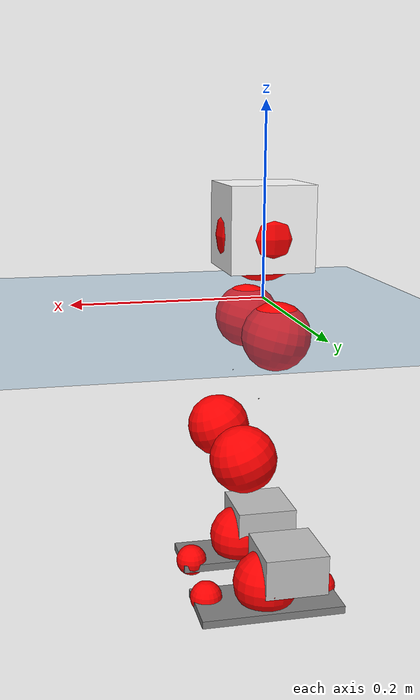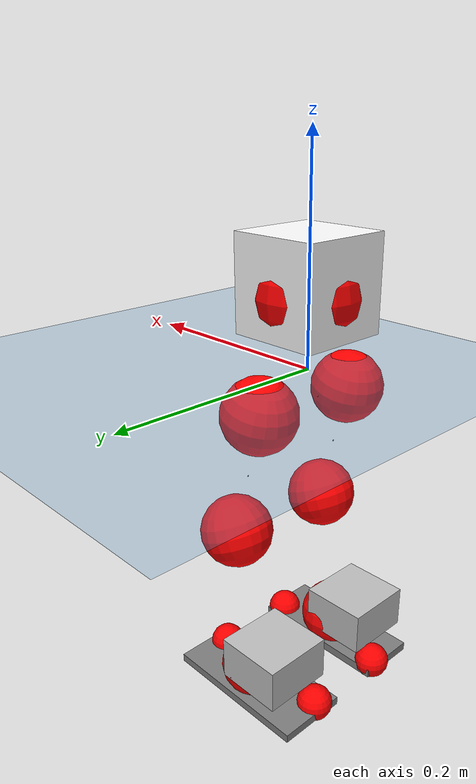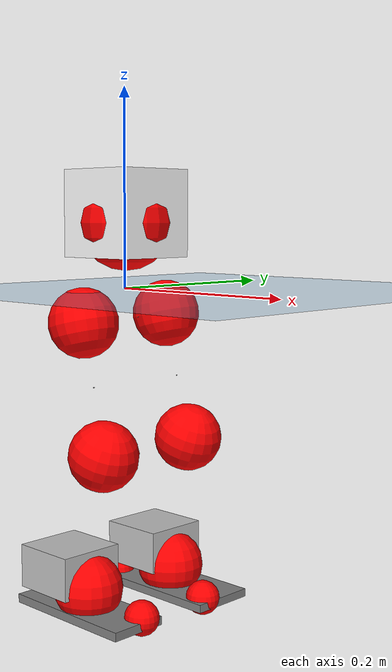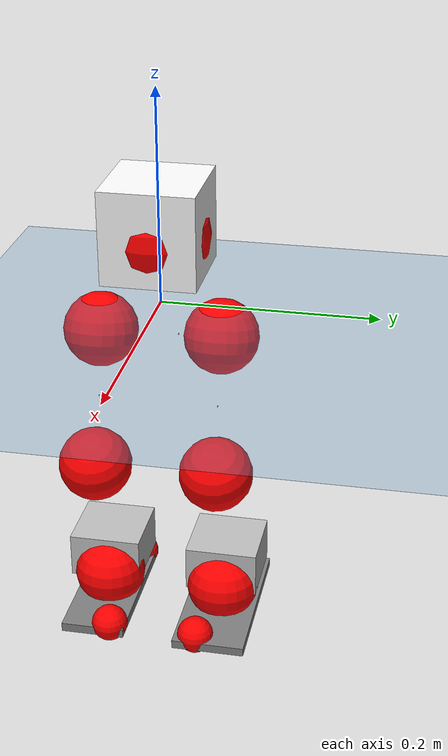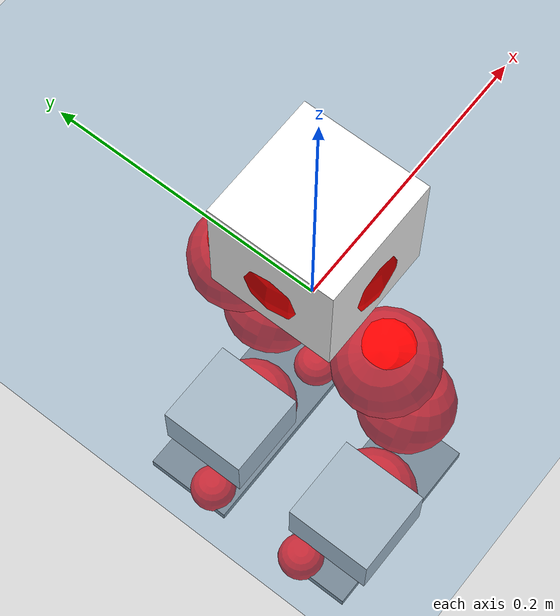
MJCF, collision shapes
<mujoco model="pi_12dof_release_v1">
  <compiler angle="radian" assetdir="assets" balanceinertia="true" inertiafromgeom="false"/>

  <option timestep="0.005" density="1.2" viscosity="2e-05"/>

  <size nkey="1"/>

  <visual>
    <quality shadowsize="8192"/>
    <map shadowclip="0.5"/>
  </visual>

  <default>
    <default class="/">
      <joint armature="0.01" damping="0.01" frictionloss="0.01"/>
      <geom contype="0" conaffinity="0" group="1" solref="-1000 -80"/>
      <site size="0.01 0.005 0.005" group="5"/>
      <general forcelimited="true" biastype="affine" gainprm="20" biasprm="0 -20 -0.5"/>
      <default class="foot">
        <geom size="0.0845 0.036 0.005" type="box" condim="6" group="4" priority="1" friction="0.9 0.2 0.2" solimp="0.015 1 0.005"/>
      </default>
      <default class="reward_collision_sphere">
        <geom group="5" rgba="1 0 0 1"/>
      </default>
    </default>
  </default>

  <asset>
    <texture type="skybox" colorspace="auto" name="//unnamed_texture_0" builtin="gradient" rgb1="0.95 0.95 0.95" rgb2="0.95 0.95 0.95" width="100" height="600"/>
    <texture type="2d" colorspace="auto" name="texplane" builtin="checker" rgb1="0.345 0.575 0.748" rgb2="0.345 0.575 0.748" markrgb="1 1 1" width="512" height="512"/>
    <material name="MatPlane" class="/" texture="texplane" texuniform="true" texrepeat="2 2" specular="0.9"/>
    <mesh name="baselink_1" class="/" file="baselink_1.STL"/>
    <mesh name="r_hip_pitch_link" class="/" file="r_hip_pitch_link.STL"/>
    <mesh name="r_hip_roll_link" class="/" file="r_hip_roll_link.STL"/>
    <mesh name="r_thigh_link" class="/" file="r_thigh_link.STL"/>
    <mesh name="r_calf_link" class="/" file="r_calf_link.STL"/>
    <mesh name="r_ankle_pitch_link" class="/" file="r_ankle_pitch_link.STL"/>
    <mesh name="r_ankle_roll_link" class="/" file="r_ankle_roll_link.STL"/>
    <mesh name="l_hip_pitch_link" class="/" file="l_hip_pitch_link.STL"/>
    <mesh name="l_hip_roll_link" class="/" file="l_hip_roll_link.STL"/>
    <mesh name="l_thigh_link" class="/" file="l_thigh_link.STL"/>
    <mesh name="l_calf_link" class="/" file="l_calf_link.STL"/>
    <mesh name="l_ankle_pitch_link" class="/" file="l_ankle_pitch_link.STL"/>
    <mesh name="l_ankle_roll_link" class="/" file="l_ankle_roll_link.STL"/>
  </asset>

  <worldbody>
    <geom name="floor" class="/" size="100 100 0.125" type="plane" group="0" material="MatPlane"/>
    <light name="toplight_shadow" class="/" pos="0 0 5" dir="0.0990148 0.0990148 -0.990148" type="directional" ambient="0.04 0.04 0.04" diffuse="0.55 0.55 0.55" specular="0.12 0.12 0.12"/>
    <light name="toplight_fill" class="/" pos="0 0 5" dir="0.0990148 0.0990148 -0.990148" type="directional" castshadow="false" ambient="0.04 0.04 0.04" diffuse="0.3 0.3 0.3" specular="0.08 0.08 0.08"/>
    <body name="trunk" pos="0.00195206 -0.000208767 0.000923907" quat="1 0.000268607 0.000680062 0.000178551">
      <inertial pos="0.000351408 -0.00166851 0.0370168" quat="0.696152 0.0094488 0.0096157 0.717768" mass="1.36544" diaginertia="0.00712735 0.00194332 0.00281847"/>
      <joint name="//unnamed_joint_0" type="free"/>
      <geom name="//unnamed_geom_1" class="/" type="mesh" density="0" rgba="1 1 1 1" mesh="baselink_1"/>
      <geom name="//unnamed_geom_2" class="/" size="0.043463 0.043463 0.043463" pos="0 0 0.0743545" type="box" rgba="1 1 1 1"/>
      <geom name="//unnamed_geom_3" class="reward_collision_sphere" size="0.0478093" pos="0 0 0.0650602"/>
      <site name="imu" class="/" pos="-0.00171679 -0.00352813 0.00669788" size="0.0086926"/>
      <camera name="track" class="/" pos="0 -1.47502 0" quat="0.707107 0.707107 0 0" mode="trackcom"/>
      <camera name="ego_camera" class="/" pos="0.0705631 0 0.167298" quat="-0.5 -0.5 0.5 0.5"/>
      <body name="r_hip_pitch_link" pos="0.000245634 -0.0164017 -0.0313688" quat="0.992159 -0.000186708 -0.124982 0.000526107">
        <inertial pos="0.000863428 -0.0419453 -0.000124446" quat="-0.0205349 0.70487 -0.0273206 0.708513" mass="0.245599" diaginertia="8.19182e-05 2.116e-05 5.74977e-05"/>
        <joint name="r_hip_pitch_joint" class="/" pos="0 0 0" axis="-0.00113957 -0.999999 -0.000704533" stiffness="0.00226345" range="-1.73117 1.25883" armature="0.00892737" damping="0.0172168" frictionloss="0.00881322"/>
        <geom name="//unnamed_geom_4" class="/" type="mesh" density="0" rgba="0.75294 0.75294 0.75294 1" mesh="r_hip_pitch_link"/>
        <geom name="//unnamed_geom_5" class="/" size="0.00043463 0.00043463 0.00043463" type="box" rgba="0.75294 0.75294 0.75294 1"/>
        <body name="r_hip_roll_link" pos="-0.000625658 -0.0401033 -8.51973e-05" quat="1 0.000214993 0.000139391 -0.000250036">
          <inertial pos="-0.000675287 -7.00255e-05 -0.0587252" quat="0.705954 -0.0787517 -0.0825516 0.699008" mass="0.254272" diaginertia="0.000243004 6.07104e-05 9.11154e-05"/>
          <joint name="r_hip_roll_joint" class="/" pos="0 0 0" axis="-0.999999 -0.000498531 -0.00162545" range="-0.112922 0.493646" armature="0.00912365" damping="0" frictionloss="0.0090598"/>
          <geom name="//unnamed_geom_6" class="/" type="mesh" density="0" rgba="0.75294 0.75294 0.75294 1" mesh="r_hip_roll_link"/>
          <geom name="//unnamed_geom_7" class="/" size="0.00043463 0.00043463 0.00043463" type="box" rgba="0.75294 0.75294 0.75294 1"/>
          <geom name="//unnamed_geom_8" class="reward_collision_sphere" size="0.0347704"/>
          <body name="r_thigh_link" pos="-0.000796408 -0.000494937 -0.063701" quat="1 7.26001e-06 -0.000179138 7.83699e-05">
            <inertial pos="-0.000277871 0.000741786 -0.0442425" quat="0.739641 0.672993 -0.00205368 -0.00272332" mass="0.0740326" diaginertia="9.50775e-05 2.11073e-05 4.08422e-05"/>
            <joint name="r_thigh_joint" class="/" pos="0 0 0" axis="0.000581335 -0.0014381 -0.999999" range="-0.31333 0.582705" armature="0.008905" damping="0.00275244" frictionloss="0.00783553"/>
            <geom name="//unnamed_geom_9" class="/" type="mesh" density="0" rgba="0.75294 0.75294 0.75294 1" mesh="r_thigh_link"/>
            <geom name="//unnamed_geom_10" class="/" size="0.00043463 0.00043463 0.00043463" type="box" rgba="0.75294 0.75294 0.75294 1"/>
            <body name="r_calf_link" pos="-0.000813254 -0.001989 -0.0669786" quat="0.947576 -6.75052e-05 0.319531 9.2793e-05">
              <inertial pos="-0.00122777 -0.00174784 -0.0648654" quat="0.999965 -0.0072364 -0.00102314 0.00415956" mass="0.532223" diaginertia="0.00260528 0.000769696 0.000122403"/>
              <joint name="r_calf_joint" class="/" pos="0 0 0" axis="-0.000247649 -1 0.000700534" range="-1.61444 0.637842" armature="0.00855902" damping="0.00926207" frictionloss="0.00886529"/>
              <geom name="//unnamed_geom_11" class="/" type="mesh" density="0" rgba="0.75294 0.75294 0.75294 1" mesh="r_calf_link"/>
              <geom name="//unnamed_geom_12" class="/" size="0.00043463 0.00043463 0.00043463" type="box" rgba="0.75294 0.75294 0.75294 1"/>
              <geom name="//unnamed_geom_13" class="reward_collision_sphere" size="0.0347704"/>
              <body name="r_ankle_pitch_link" pos="-5.94438e-05 -0.000761524 -0.130379" quat="0.980068 -3.54734e-05 -0.198664 -4.70797e-05">
                <inertial pos="0.00388029 0.00226067 -0.000805953" quat="0.00132542 0.707003 -0.00281406 0.707204" mass="0.116308" diaginertia="0.000228142 4.94298e-05 8.49171e-05"/>
                <joint name="r_ankle_pitch_joint" class="/" pos="0 0 0" axis="1.14994e-05 -0.999978 -0.00666305" stiffness="0.0003076" range="-1.3175 0.499137" armature="0.00875793" damping="0.00467381" frictionloss="0.00842567"/>
                <geom name="//unnamed_geom_14" class="/" type="mesh" density="0" rgba="0.75294 0.75294 0.75294 1" mesh="r_ankle_pitch_link"/>
                <geom name="//unnamed_geom_15" class="/" size="0.0339012 0.0347704 0.0217315" type="box" rgba="0.75294 0.75294 0.75294 1"/>
                <body name="r_ankle_roll_link" pos="0.0719872 0.00291567 0.000634405" quat="1 1.3226e-05 -2.43395e-05 7.7349e-05">
                  <inertial pos="-0.0225093 0.000424813 -0.0135195" quat="0.557438 0.43488 0.43061 0.560996" mass="0.341742" diaginertia="0.000835762 0.000225418 0.000196246"/>
                  <joint name="r_ankle_roll_joint" class="/" pos="0 0 0" axis="-0.99995 -0.00211952 -0.00981526" range="-0.18068 0.155216" armature="0.00928354" damping="0.00622203" frictionloss="0.00864934"/>
                  <geom name="//unnamed_geom_16" class="/" type="mesh" density="0" rgba="0.75294 0.75294 0.75294 1" mesh="r_ankle_roll_link"/>
                  <geom name="//unnamed_geom_17" class="/" type="mesh" rgba="0.75294 0.75294 0.75294 1" mesh="r_ankle_roll_link"/>
                  <geom name="right_foot" class="foot" size="0.0733278 0.0303714 0.00436266" pos="-0.0479829 0 -0.040895"/>
                  <geom name="//unnamed_geom_19" class="reward_collision_sphere" size="0.0347704" pos="-0.0470421 0 -0.0185886"/>
                  <geom name="//unnamed_geom_20" class="reward_collision_sphere" size="0.0173852" pos="0.0141126 0.0147502 -0.0371773"/>
                  <geom name="//unnamed_geom_21" class="reward_collision_sphere" size="0.0173852" pos="-0.112901 0.0147502 -0.0371773"/>
                  <site name="right_foot" class="foot" pos="-0.0479829 0 -0.040895" size="0.0086926"/>
                </body>
              </body>
            </body>
          </body>
        </body>
      </body>
      <body name="l_hip_pitch_link" pos="-0.000156168 0.0168092 -0.0306217" quat="0.992199 -3.59494e-05 -0.124666 -8.55248e-05">
        <inertial pos="-0.000137069 0.0411977 -0.000280872" quat="-0.0311726 0.70589 0.0225822 0.707275" mass="0.261013" diaginertia="9.50728e-05 2.30225e-05 7.10448e-05"/>
        <joint name="l_hip_pitch_joint" class="/" pos="0 0 0" axis="-0.00793619 0.999964 0.00316227" range="-1.26628 1.75034" armature="0.00855903" damping="0.00594699" frictionloss="0.00867986"/>
        <geom name="//unnamed_geom_22" class="/" type="mesh" density="0" rgba="0.75294 0.75294 0.75294 1" mesh="l_hip_pitch_link"/>
        <geom name="//unnamed_geom_23" class="/" size="0.00043463 0.00043463 0.00043463" type="box" rgba="0.75294 0.75294 0.75294 1"/>
        <body name="l_hip_roll_link" pos="0.000443008 0.0402314 0.00140677" quat="1 1.45438e-05 -0.000124435 0.000227341">
          <inertial pos="-0.00143972 -9.52698e-05 -0.0566508" quat="0.697369 -0.0729274 -0.0754627 0.708988" mass="0.258983" diaginertia="0.000243591 6.04504e-05 8.834e-05"/>
          <joint name="l_hip_roll_joint" class="/" pos="0 0 0" axis="-0.999993 -0.00355469 -0.00120616" range="-0.511085 0.127896" armature="0.00902371" damping="0.00555727" frictionloss="0.00908206"/>
          <geom name="//unnamed_geom_24" class="/" type="mesh" density="0" rgba="0.75294 0.75294 0.75294 1" mesh="l_hip_roll_link"/>
          <geom name="//unnamed_geom_25" class="/" size="0.00043463 0.00043463 0.00043463" type="box" rgba="0.75294 0.75294 0.75294 1"/>
          <geom name="//unnamed_geom_26" class="reward_collision_sphere" size="0.0347704"/>
          <body name="l_thigh_link" pos="0.000273588 -0.000815172 -0.066" quat="1 -7.54919e-05 7.5225e-06 -7.2099e-05">
            <inertial pos="0.00122781 0.000376133 -0.0445127" quat="0.675623 0.737237 -0.00361388 -0.00128566" mass="0.0733036" diaginertia="9.19541e-05 2.04421e-05 3.88118e-05"/>
            <joint name="l_thigh_joint" class="/" pos="0 0 0" axis="-0.00428896 0.00102216 -0.99999" range="-0.604524 0.29734" armature="0.00835833" damping="0" frictionloss="0.00835134"/>
            <geom name="//unnamed_geom_27" class="/" type="mesh" density="0" rgba="0.75294 0.75294 0.75294 1" mesh="l_thigh_link"/>
            <geom name="//unnamed_geom_28" class="/" size="0.00043463 0.00043463 0.00043463" type="box" rgba="0.75294 0.75294 0.75294 1"/>
            <body name="l_calf_link" pos="-0.000534761 0.00116293 -0.0650998" quat="0.947799 -0.000730979 0.318867 -0.000116682">
              <inertial pos="0.00207734 0.0022584 -0.0670834" quat="0.999984 0.00307632 -0.000279523 0.00476559" mass="0.535097" diaginertia="0.00260362 0.000766061 0.000120433"/>
              <joint name="l_calf_joint" class="/" pos="0 0 0" axis="0.00261685 0.999996 -0.00137685" stiffness="0.00397161" range="-0.659914 1.66401" armature="0.00843987" damping="0.00587428" frictionloss="0.00827795"/>
              <geom name="//unnamed_geom_29" class="/" type="mesh" density="0" rgba="0.75294 0.75294 0.75294 1" mesh="l_calf_link"/>
              <geom name="//unnamed_geom_30" class="/" size="0.00043463 0.00043463 0.00043463" type="box" rgba="0.75294 0.75294 0.75294 1"/>
              <geom name="//unnamed_geom_31" class="reward_collision_sphere" size="0.0347704"/>
              <body name="l_ankle_pitch_link" pos="0.00101942 0.000594429 -0.13196" quat="0.980066 1.0658e-06 -0.198674 2.71138e-06">
                <inertial pos="0.00419286 -0.000500945 -0.000172973" quat="-0.0019123 0.7071 0.0022348 0.707107" mass="0.114129" diaginertia="0.000225826 4.82746e-05 8.32544e-05"/>
                <joint name="l_ankle_pitch_joint" class="/" pos="0 0 0" axis="0.000693851 0.999999 0.00138329" range="-0.502981 1.314" armature="0.00862813" damping="0.0110756" frictionloss="0.00826872"/>
                <geom name="//unnamed_geom_32" class="/" type="mesh" density="0" rgba="0.75294 0.75294 0.75294 1" mesh="l_ankle_pitch_link"/>
                <geom name="//unnamed_geom_33" class="/" size="0.0339012 0.0347704 0.0217315" type="box" rgba="0.75294 0.75294 0.75294 1"/>
                <body name="l_ankle_roll_link" pos="0.0714891 0.000118448 -0.000816306" quat="1 8.53857e-05 -0.000119531 0.000159843">
                  <inertial pos="-0.0237034 -0.000101193 -0.0131441" quat="0.559546 0.433805 0.432771 0.55806" mass="0.339863" diaginertia="0.000824617 0.000224199 0.000198419"/>
                  <joint name="l_ankle_roll_joint" class="/" pos="0 0 0" axis="-0.999971 0.00382687 -0.00651234" range="-0.149514 0.133423" armature="0.00905306" damping="0.00922464" frictionloss="0.00912097"/>
                  <geom name="//unnamed_geom_34" class="/" type="mesh" density="0" rgba="0.75294 0.75294 0.75294 1" mesh="l_ankle_roll_link"/>
                  <geom name="//unnamed_geom_35" class="/" type="mesh" rgba="0.75294 0.75294 0.75294 1" mesh="l_ankle_roll_link"/>
                  <geom name="left_foot" class="foot" size="0.0768202 0.0346501 0.00411654" pos="-0.0479829 0 -0.040895"/>
                  <geom name="//unnamed_geom_37" class="reward_collision_sphere" size="0.0347704" pos="-0.0470421 0 -0.0185886"/>
                  <geom name="//unnamed_geom_38" class="reward_collision_sphere" size="0.0173852" pos="0.0141126 -0.0147502 -0.0371773"/>
                  <geom name="//unnamed_geom_39" class="reward_collision_sphere" size="0.0173852" pos="-0.112901 -0.0147502 -0.0371773"/>
                  <site name="left_foot" class="foot" pos="-0.0479829 0 -0.040895" size="0.0086926"/>
                </body>
              </body>
            </body>
          </body>
        </body>
      </body>
    </body>
  </worldbody>

  <contact>
    <pair class="/" geom1="floor" geom2="right_foot" name="//unnamed_contact_1"/>
    <pair class="/" geom1="floor" geom2="left_foot" name="//unnamed_contact_0"/>
  </contact>

  <actuator>
    <general name="r_hip_pitch_joint" class="/" joint="r_hip_pitch_joint" forcerange="-18.4846 18.4846" gainprm="17.356" biasprm="0 -17.356 -0.425729"/>
    <general name="r_hip_roll_joint" class="/" joint="r_hip_roll_joint" forcerange="-17.9501 17.9501" gainprm="17.356" biasprm="0 -17.356 -0.425729"/>
    <general name="r_thigh_joint" class="/" joint="r_thigh_joint" forcerange="-18.0059 18.0059" gainprm="17.356" biasprm="0 -17.356 -0.425729"/>
    <general name="r_calf_joint" class="/" joint="r_calf_joint" forcerange="-19.507 19.507" gainprm="17.356" biasprm="0 -17.356 -0.425729"/>
    <general name="r_ankle_pitch_joint" class="/" joint="r_ankle_pitch_joint" forcerange="-18.3543 18.3543" gainprm="17.356" biasprm="0 -17.356 -0.425729"/>
    <general name="r_ankle_roll_joint" class="/" joint="r_ankle_roll_joint" forcerange="-17.2982 17.2982" gainprm="17.356" biasprm="0 -17.356 -0.425729"/>
    <general name="l_hip_pitch_joint" class="/" joint="l_hip_pitch_joint" forcerange="-18.1733 18.1733" gainprm="17.356" biasprm="0 -17.356 -0.425729"/>
    <general name="l_hip_roll_joint" class="/" joint="l_hip_roll_joint" forcerange="-18.7743 18.7743" gainprm="17.356" biasprm="0 -17.356 -0.425729"/>
    <general name="l_thigh_joint" class="/" joint="l_thigh_joint" forcerange="-17.8872 17.8872" gainprm="17.356" biasprm="0 -17.356 -0.425729"/>
    <general name="l_calf_joint" class="/" joint="l_calf_joint" forcerange="-18.4251 18.4251" gainprm="17.356" biasprm="0 -17.356 -0.425729"/>
    <general name="l_ankle_pitch_joint" class="/" joint="l_ankle_pitch_joint" forcerange="-17.6985 17.6985" gainprm="17.356" biasprm="0 -17.356 -0.425729"/>
    <general name="l_ankle_roll_joint" class="/" joint="l_ankle_roll_joint" forcerange="-18.2818 18.2818" gainprm="17.356" biasprm="0 -17.356 -0.425729"/>
  </actuator>

  <sensor>
    <gyro site="imu" name="imu_angular_velocity"/>
    <velocimeter site="imu" name="imu_linear_velocity"/>
    <framelinvel objtype="site" objname="left_foot" name="left_foot_global_linear_velocity"/>
    <framelinvel objtype="site" objname="right_foot" name="right_foot_global_linear_velocity"/>
  </sensor>

  <keyframe>
    <key name="home" qpos="0 0 0.291 1 0 0 0 0.4 0 0 -0.8 0.4 0 -0.4 0 0 0.8 -0.4 0"/>
  </keyframe>
</mujoco>
